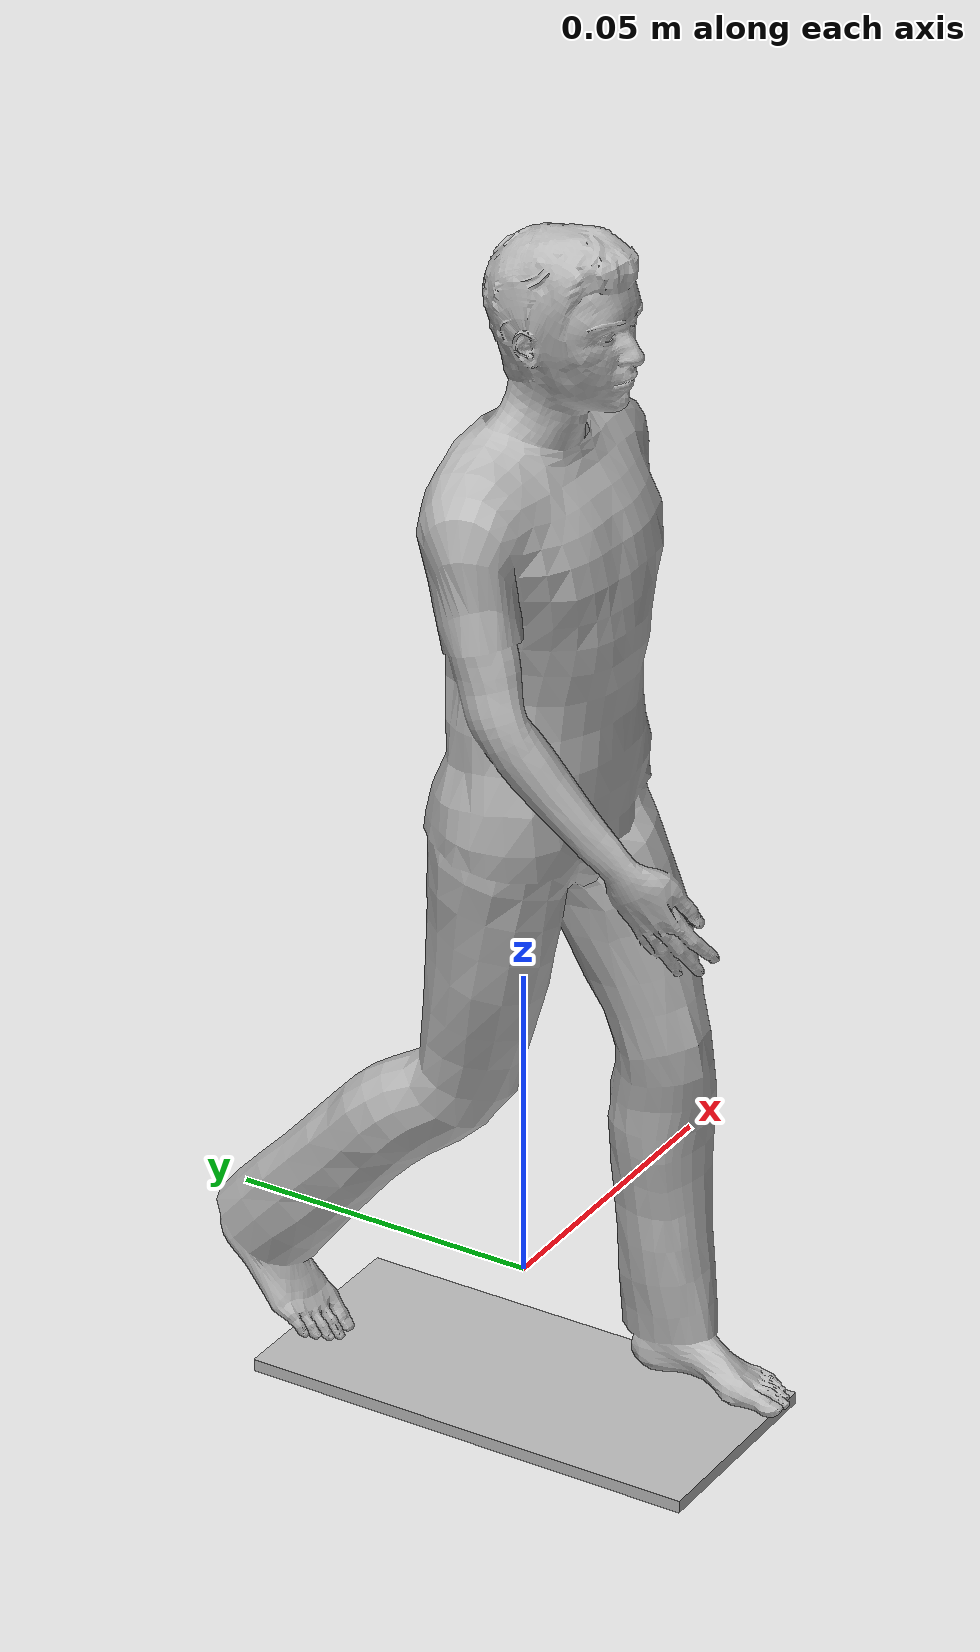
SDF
<?xml version="1.0" ?>
<sdf version="1.5">
  <model name="custom_person_walking">
    <link name="link">
      <inertial>
        <pose>0 0 0.095 0 0 0</pose>
        <mass>1.0</mass>
        <inertia>
          <ixx>0.001003749</ixx> <ixy>0</ixy> <ixz>0</ixz>
          <iyy>0.001289133</iyy> <iyz>0</iyz>
          <izz>0.009025</izz>
        </inertia>
      </inertial>

      <collision name="bottom">
        <pose>0 0 -0.02 0 0 0</pose>
        <geometry>
          <box>
            <size>0.035 0.075 0.002</size>
          </box>
        </geometry>
      </collision>

      <collision name="person">

        <pose>0 0 -0.02 0 0 0</pose>
        <geometry>
          <mesh>
            <uri>model://person_walking/meshes/walking.dae</uri>
            <scale>0.1 0.1 0.1</scale>
          </mesh>
        </geometry>

        <surface>
          <contact>
            <ode>
              <kp>1000000.0</kp>
              <kd>1.0</kd>
              <max_vel>0.1</max_vel>
              <min_depth>0.001</min_depth>
            </ode>
          </contact>
          <friction>
            <ode>
              <mu>1.0</mu>
              <mu2>1.0</mu2>
              <slip1>0.0</slip1>
              <slip2>0.0</slip2>
            </ode>
          </friction>
        </surface>

      </collision>

      <visual name="visual">
        <pose>0 0 -0.02 0 0 0</pose>
        <geometry>
          <mesh>
            <uri>model://person_walking/meshes/walking.dae</uri>
            <scale>0.1 0.1 0.1</scale>
          </mesh>
        </geometry>
      </visual>

      <visual name="visual2">
        <pose>0 0 -0.02 0 0 0</pose>
        <geometry>
          <box>
            <size>0.035 0.075 0.002</size>
          </box>
        </geometry>
      </visual>

    </link>
  </model>
</sdf>
